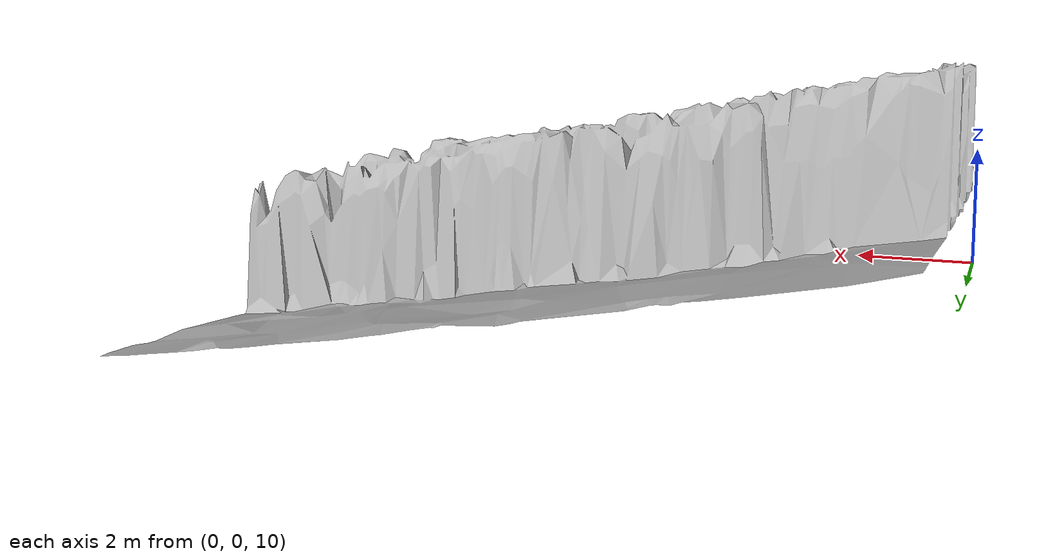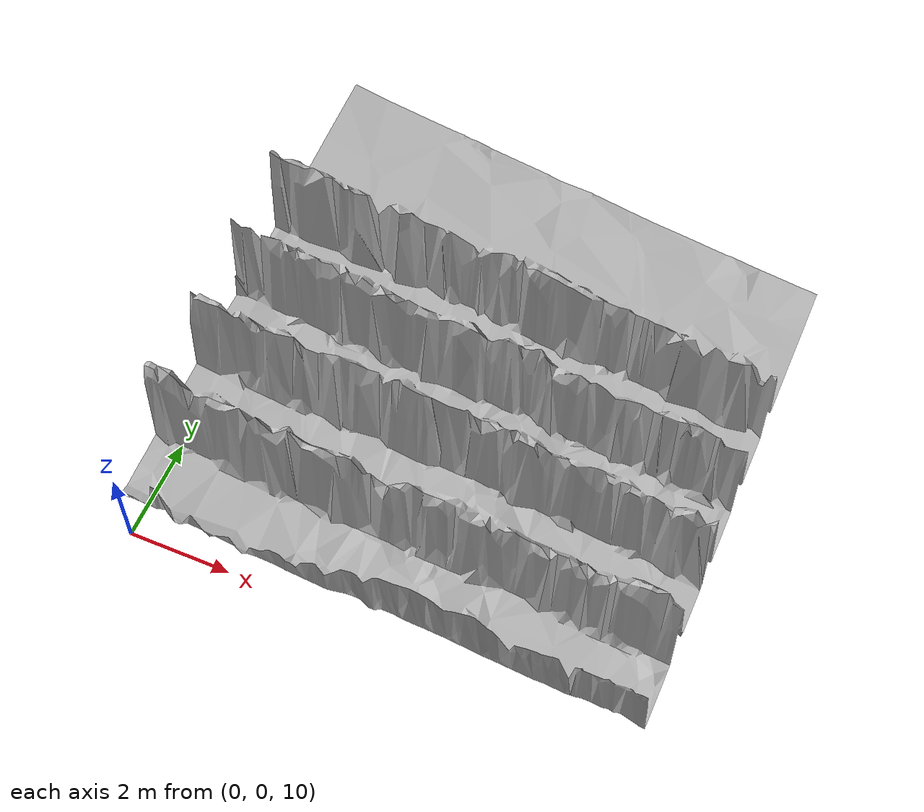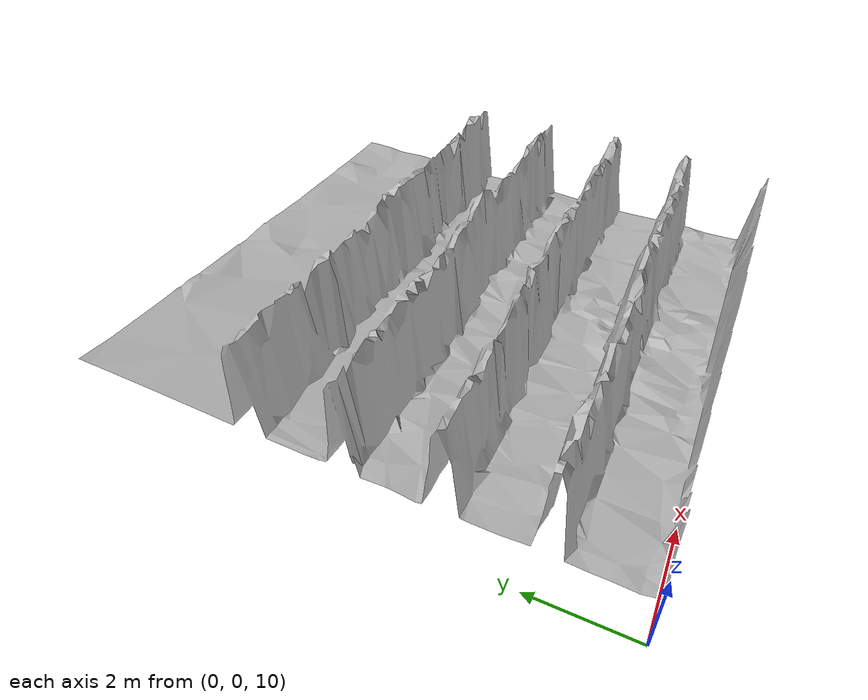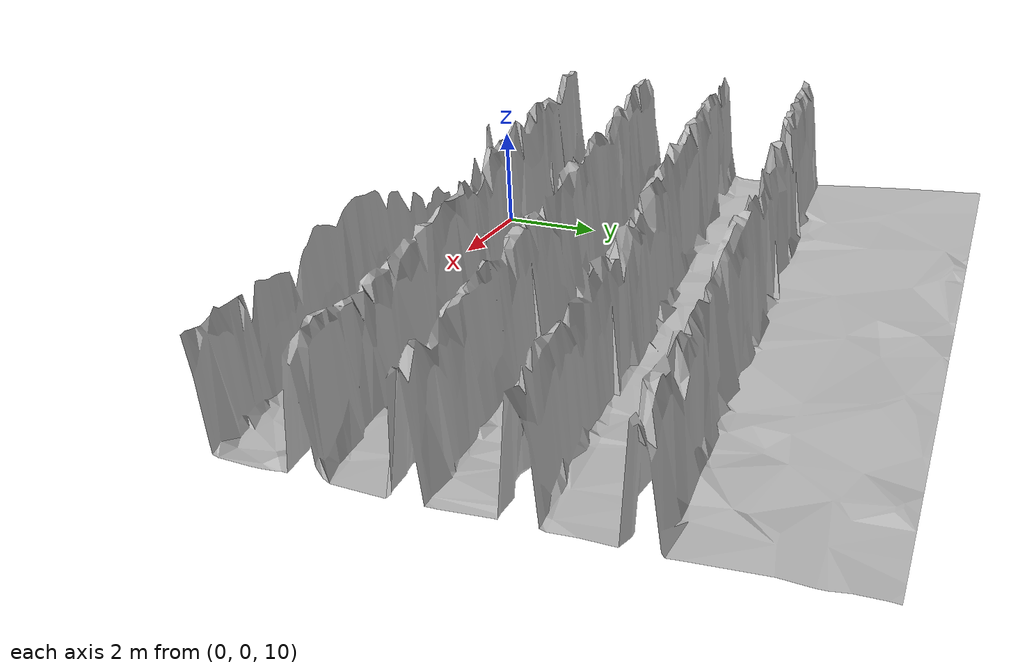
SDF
<?xml version="1.0" ?>
<sdf version="1.10">
    <model name="map_260_60">
        <link name="map_260_60_link">
            <visual name="map_260_60_visual">
                <geometry>
                    <mesh>
                        <uri>meshes/visual/map_260_60.obj</uri>
                    </mesh>
                </geometry>
            </visual>
            <collision name="map_260_60_collision">
                <surface>
                    <friction>
                        <ode>
                            <mu>2.316343837943928</mu>
                            <mu2>2.316343837943928</mu2>
                        </ode>
                        <bullet>
                            <friction>2.316343837943928</friction>
                            <friction2>2.316343837943928</friction2>
                        </bullet>
                    </friction>
                </surface>
                <geometry>
                    <mesh>
                        <uri>meshes/visual/map_260_60.obj</uri>
                    </mesh>
                </geometry>
            </collision>
        </link>
        <static>True</static>
    </model>
</sdf>
